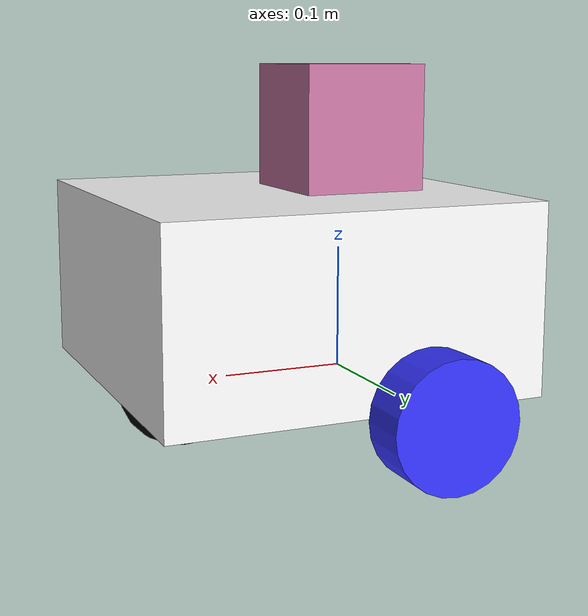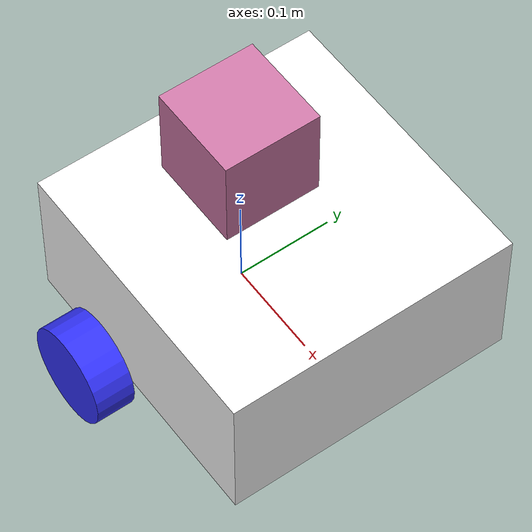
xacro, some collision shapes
<?xml version="1.0"?>
<robot xmlns:xacro="http://www.ros.org/wiki/xacro">

    <xacro:include filename="inertial_macros.xacro"/>

    <material name="white">
        <color rgba="1 1 1 1" />
    </material>
    <material name="orange">
        <color rgba="1 0.3 0.1 1"/>
    </material>
    <material name="blue">
        <color rgba="0.2 0.2 1 1"/>
    </material>
    <material name="black">
        <color rgba="0 0 0 1"/>
    </material>

    <!-- BASE LINK -->
    <link name="base_link">
        <visual>
            <origin xyz="0 0 0"/>
            <geometry>
                <box size="0.001 0.001 0.001"/>
            </geometry>
            <material name="black"/>
        </visual>
        <collision>
            <origin xyz="0 0 0"/>
            <geometry>
                <box size="0.001 0.001 0.001"/>
            </geometry>
        </collision>
        <inertial>
            <mass value="1.0"/>
            <origin xyz="0 0 0" rpy="0 0 0"/>
            <inertia ixx="0.01" ixy="0.0" ixz="0.0" iyy="0.01" iyz="0.0" izz="0.01"/>
        </inertial>

    </link>

    <!-- CHASSIS LINK -->
    <joint name="chassis_joint" type="fixed">
        <parent link="base_link"/>
        <child link="chassis"/>
        <origin xyz="-0.1 0 0"/>
    </joint>

    <link name="chassis">
        <visual>
            <origin xyz="0.15 0 0.075"/>
            <geometry>
                <box size="0.3 0.3 0.15"/>
            </geometry>
            <material name="white"/>
        </visual>
        <collision>
            <origin xyz="0.15 0 0.075"/>
            <geometry>
                <box size="0.3 0.3 0.15"/>
            </geometry>
        </collision>
        <xacro:inertial_box mass="0.5" x="0.3" y="0.3" z="0.15">
            <origin xyz="0.15 0 0.075" rpy="0 0 0"/>
        </xacro:inertial_box>
    </link>

    <!-- LEFT WHEEL LINK -->
    <joint name="left_wheel_joint" type="continuous">
        <parent link="base_link"/>
        <child link="left_wheel"/>
        <origin xyz="0 0.175 0" rpy="-${pi/2} 0 0"/>
        <axis xyz="0 0 1"/>
    </joint>

    <link name="left_wheel">
        <visual>
            <geometry>
                <cylinder radius="0.05" length="0.04"/>
            </geometry>
            <material name="blue"/>
        </visual>
        <collision>
            <geometry>
                <cylinder radius="0.05" length="0.04"/>
            </geometry>
        </collision>
        <xacro:inertial_cylinder mass="0.1" length="0.04" radius="0.05">
            <origin xyz="0 0 0" rpy="0 0 0"/>
        </xacro:inertial_cylinder>
    </link>

    <!-- RIGHT WHEEL LINK -->
    <joint name="right_wheel_joint" type="continuous">
        <parent link="base_link"/>
        <child link="right_wheel"/>
        <origin xyz="0 -0.175 0" rpy="${pi/2} 0 0"/>
        <axis xyz="0 0 1"/>
    </joint>

    <link name="right_wheel">
        <visual>
            <geometry>
                <cylinder radius="0.05" length="0.04"/>
            </geometry>
            <material name="blue"/>
        </visual>
        <collision>
            <geometry>
                <cylinder radius="0.05" length="0.04"/>
            </geometry>
        </collision>
        <xacro:inertial_cylinder mass="0.1" length="0.04" radius="0.05">
            <origin xyz="0 0 0" rpy="0 0 0"/>
        </xacro:inertial_cylinder>
    </link>

    <!-- CASTER WHEEL LINK -->
    <joint name="caster_wheel_joint" type="fixed">
        <parent link="chassis"/>
        <child link="caster_wheel"/>
        <origin xyz="0.24 0 0"/>
    </joint>

    <link name="caster_wheel">
        <visual>
            <geometry>
                <sphere radius="0.05"/>
            </geometry>
            <material name="black"/>
        </visual>
        <collision>
            <geometry>
                <sphere radius="0.05"/>
            </geometry>
        </collision>
        <xacro:inertial_sphere mass="0.1" radius="0.05">
            <origin xyz="0 0 0" rpy="0 0 0"/>
        </xacro:inertial_sphere>
    </link>

    <!-- STEP 8 - IMU -->
    <joint name="imu_joint" type="fixed">
        <origin xyz="0 0 0" rpy="0 0 0" />
        <parent link="base_link"/>
        <child link="imu_link" />
    </joint>

    <link name="imu_link">
    </link>

    <!-- STEP 10 - Lidar -->
    <joint type="fixed" name="scan_joint">
        <origin xyz="0.0 0 0.15" rpy="0 0 0"/>
        <child link="scan_link"/>
        <parent link="base_link"/>
        <axis xyz="0 1 0"/>
    </joint>

    <link name="scan_link">
        <inertial>
            <mass value="1e-5"/>
            <origin xyz="0 0 0.05" rpy="0 0 0"/>
            <inertia ixx="1e-6" ixy="0" ixz="0" iyy="1e-6" iyz="0" izz="1e-6"/>
        </inertial>
        <collision name="collision">
            <origin xyz="0 0 0.05" rpy="0 0 0"/>
            <geometry>
                <box size="0.1 0.1 0.1"/>
            </geometry>
        </collision>
        <visual name="scan_link_visual">
            <origin xyz="0 0 0.05" rpy="0 0 0"/>
            <geometry>
                <mesh filename="model://meshes/lidar.dae" scale="2 2 2"/>
            </geometry>
        </visual>

    </link>

</robot>
